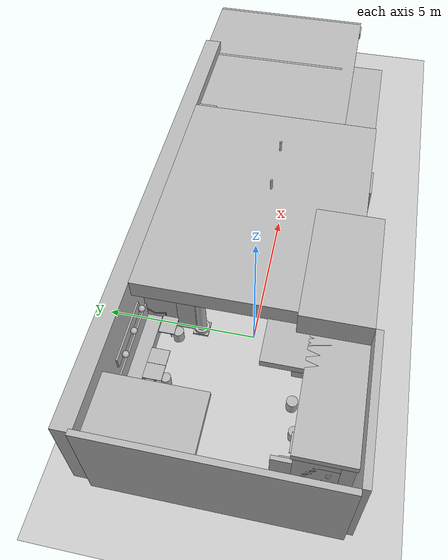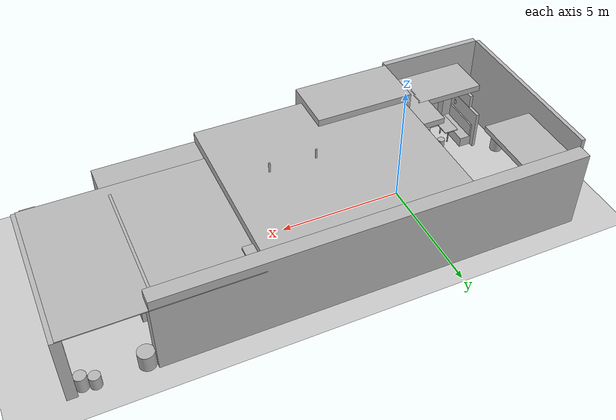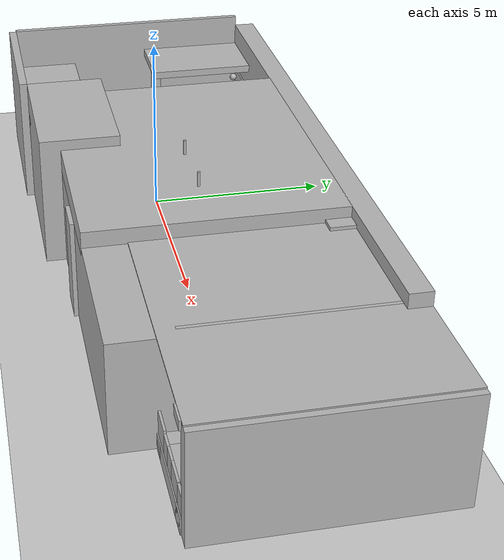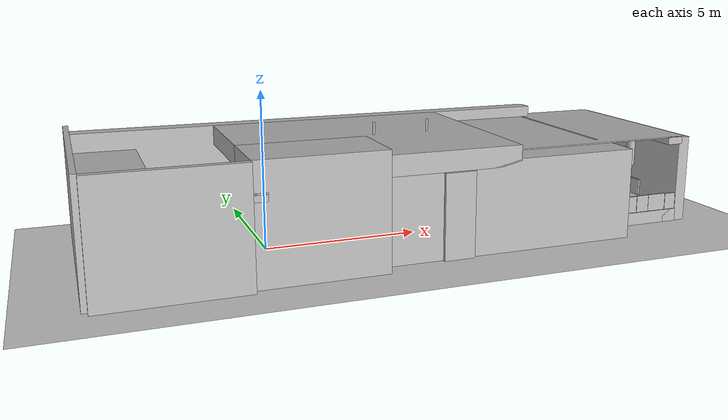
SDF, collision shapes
<?xml version="1.0" encoding="UTF-8"?>
<sdf version="1.6">
    <model name="ionic_interior">
        <static>true</static>
        <link name="base_link">
            <visual name="ionic_visual">
                <cast_shadows>false</cast_shadows>
                <geometry>
                    <mesh>
                        <uri>meshes/Ionic.glb</uri>
                    </mesh>
                </geometry>
            </visual>
            <collision name="collider_cylinder.001">
                <pose>11.63203 3.92229 0.34518 0.0 -0.0 0.0</pose>
                <geometry>
                    <cylinder>
                        <length>0.69082</length>
                        <radius>0.3156</radius>
                    </cylinder>
                </geometry>
            </collision>
            <collision name="collider_cylinder.002">
                <pose>13.41941 4.03289 0.26441 0.0 -0.0 0.0</pose>
                <geometry>
                    <cylinder>
                        <length>0.52911</length>
                        <radius>0.21027</radius>
                    </cylinder>
                </geometry>
            </collision>
            <collision name="collider_cylinder.003">
                <pose>13.85553 3.92535 0.32148 0.0 -0.0 0.0</pose>
                <geometry>
                    <cylinder>
                        <length>0.64296</length>
                        <radius>0.22621</radius>
                    </cylinder>
                </geometry>
            </collision>
            <collision name="collider_cylinder.004">
                <pose>9.35202 0.74052 0.2566 0.0 -0.0 0.0</pose>
                <geometry>
                    <cylinder>
                        <length>0.508</length>
                        <radius>0.17946</radius>
                    </cylinder>
                </geometry>
            </collision>
            <collision name="collider_cylinder.005">
                <pose>8.85725 0.72739 0.2566 0.0 -0.0 0.0</pose>
                <geometry>
                    <cylinder>
                        <length>0.508</length>
                        <radius>0.1798</radius>
                    </cylinder>
                </geometry>
            </collision>
            <collision name="collider_cylinder.006">
                <pose>8.35475 0.71067 0.2566 0.0 -0.0 0.0</pose>
                <geometry>
                    <cylinder>
                        <length>0.508</length>
                        <radius>0.1794</radius>
                    </cylinder>
                </geometry>
            </collision>
            <collision name="collider_cylinder.007">
                <pose>7.87594 0.75414 0.2566 0.0 -0.0 0.0</pose>
                <geometry>
                    <cylinder>
                        <length>0.508</length>
                        <radius>0.18068</radius>
                    </cylinder>
                </geometry>
            </collision>
            <collision name="collider_cylinder.008">
                <pose>9.3645 -0.29616 0.2566 0.0 -0.0 0.0</pose>
                <geometry>
                    <cylinder>
                        <length>0.508</length>
                        <radius>0.17976</radius>
                    </cylinder>
                </geometry>
            </collision>
            <collision name="collider_cylinder.009">
                <pose>8.85209 -0.28822 0.2566 0.0 -0.0 0.0</pose>
                <geometry>
                    <cylinder>
                        <length>0.508</length>
                        <radius>0.18185</radius>
                    </cylinder>
                </geometry>
            </collision>
            <collision name="collider_cylinder.010">
                <pose>8.35524 -0.30836 0.2566 0.0 -0.0 0.0</pose>
                <geometry>
                    <cylinder>
                        <length>0.508</length>
                        <radius>0.1797</radius>
                    </cylinder>
                </geometry>
            </collision>
            <collision name="collider_cylinder.011">
                <pose>7.86338 -0.28717 0.2566 0.0 -0.0 0.0</pose>
                <geometry>
                    <cylinder>
                        <length>0.508</length>
                        <radius>0.17954</radius>
                    </cylinder>
                </geometry>
            </collision>
            <collision name="collider_cylinder.012">
                <pose>7.38266 -0.30014 0.2566 0.0 -0.0 0.0</pose>
                <geometry>
                    <cylinder>
                        <length>0.508</length>
                        <radius>0.17983</radius>
                    </cylinder>
                </geometry>
            </collision>
            <collision name="collider_box.001">
                <pose>8.20823 0.21634 0.39826 0.0 -0.0 0.0</pose>
                <geometry>
                    <box>
                        <size>1.96237 0.1778 0.79652</size>
                    </box>
                </geometry>
            </collision>
            <collision name="collider_box.002">
                <pose>8.233 0.21402 0.8128 0.0 -0.0 0.0</pose>
                <geometry>
                    <box>
                        <size>2.92796 0.66898 0.1016</size>
                    </box>
                </geometry>
            </collision>
            <collision name="collider_cylinder.013">
                <pose>9.96745 -1.10014 0.32148 0.0 -0.0 0.0</pose>
                <geometry>
                    <cylinder>
                        <length>0.64296</length>
                        <radius>0.22621</radius>
                    </cylinder>
                </geometry>
            </collision>
            <collision name="collider_cylinder.014">
                <pose>10.61982 -1.02011 0.43201 0.0 -0.0 0.0</pose>
                <geometry>
                    <cylinder>
                        <length>0.8646</length>
                        <radius>0.39499</radius>
                    </cylinder>
                </geometry>
            </collision>
            <collision name="collider_box.003">
                <pose>9.48713 -1.38931 1.74225 0.0 -0.0 0.0</pose>
                <geometry>
                    <box>
                        <size>2.08298 0.06385 0.41724</size>
                    </box>
                </geometry>
            </collision>
            <collision name="collider_box.004">
                <pose>0.88429 3.62351 1.68606 0.0 -0.0 0.0</pose>
                <geometry>
                    <box>
                        <size>1.65518 0.06748 0.41659</size>
                    </box>
                </geometry>
            </collision>
            <collision name="collider_box.005">
                <pose>-4.24977 3.62399 1.74225 0.0 -0.0 0.0</pose>
                <geometry>
                    <box>
                        <size>2.08298 0.06385 0.41724</size>
                    </box>
                </geometry>
            </collision>
            <collision name="collider_box.007">
                <pose>9.05747 3.62351 1.68606 0.0 -0.0 0.0</pose>
                <geometry>
                    <box>
                        <size>1.65518 0.06748 0.41659</size>
                    </box>
                </geometry>
            </collision>
            <collision name="collider_box.008">
                <pose>-1.61923 3.62399 1.74225 0.0 -0.0 0.0</pose>
                <geometry>
                    <box>
                        <size>2.08298 0.06385 0.41724</size>
                    </box>
                </geometry>
            </collision>
            <collision name="collider_box.009">
                <pose>3.40203 3.62399 1.74225 0.0 -0.0 0.0</pose>
                <geometry>
                    <box>
                        <size>2.08298 0.06385 0.41724</size>
                    </box>
                </geometry>
            </collision>
            <collision name="collider_box.010">
                <pose>-2.62727 -3.55526 1.74225 0.0 -0.0 0.0</pose>
                <geometry>
                    <box>
                        <size>2.08298 0.06385 0.41724</size>
                    </box>
                </geometry>
            </collision>
            <collision name="collider_sphere.001">
                <pose>8.86894 3.47688 1.74825 0.0 -0.0 0.0</pose>
                <geometry>
                    <sphere>
                        <radius>0.10951</radius>
                    </sphere>
                </geometry>
            </collision>
            <collision name="collider_sphere.002">
                <pose>9.72558 3.47688 1.74825 0.0 -0.0 0.0</pose>
                <geometry>
                    <sphere>
                        <radius>0.10951</radius>
                    </sphere>
                </geometry>
            </collision>
            <collision name="collider_sphere.003">
                <pose>6.75966 3.47742 1.74825 0.0 -0.0 0.0</pose>
                <geometry>
                    <sphere>
                        <radius>0.10951</radius>
                    </sphere>
                </geometry>
            </collision>
            <collision name="collider_sphere.004">
                <pose>5.94922 3.47742 1.74825 0.0 -0.0 0.0</pose>
                <geometry>
                    <sphere>
                        <radius>0.10951</radius>
                    </sphere>
                </geometry>
            </collision>
            <collision name="collider_sphere.005">
                <pose>5.13879 3.47742 1.74825 0.0 -0.0 0.0</pose>
                <geometry>
                    <sphere>
                        <radius>0.10951</radius>
                    </sphere>
                </geometry>
            </collision>
            <collision name="collider_sphere.006">
                <pose>-1.93623 -3.40869 1.74825 0.0 -0.0 0.0</pose>
                <geometry>
                    <sphere>
                        <radius>0.10951</radius>
                    </sphere>
                </geometry>
            </collision>
            <collision name="collider_sphere.007">
                <pose>-2.74667 -3.40869 1.74825 0.0 -0.0 0.0</pose>
                <geometry>
                    <sphere>
                        <radius>0.10951</radius>
                    </sphere>
                </geometry>
            </collision>
            <collision name="collider_sphere.008">
                <pose>9.36774 -1.24274 1.74825 0.0 -0.0 0.0</pose>
                <geometry>
                    <sphere>
                        <radius>0.10951</radius>
                    </sphere>
                </geometry>
            </collision>
            <collision name="collider_sphere.009">
                <pose>10.17817 -1.24274 1.74825 0.0 -0.0 0.0</pose>
                <geometry>
                    <sphere>
                        <radius>0.10951</radius>
                    </sphere>
                </geometry>
            </collision>
            <collision name="collider_sphere.010">
                <pose>8.5573 -1.24274 1.74825 0.0 -0.0 0.0</pose>
                <geometry>
                    <sphere>
                        <radius>0.10951</radius>
                    </sphere>
                </geometry>
            </collision>
            <collision name="collider_sphere.011">
                <pose>4.33187 3.47742 1.74825 0.0 -0.0 0.0</pose>
                <geometry>
                    <sphere>
                        <radius>0.10951</radius>
                    </sphere>
                </geometry>
            </collision>
            <collision name="collider_sphere.012">
                <pose>3.52143 3.47742 1.74825 0.0 -0.0 0.0</pose>
                <geometry>
                    <sphere>
                        <radius>0.10951</radius>
                    </sphere>
                </geometry>
            </collision>
            <collision name="collider_sphere.013">
                <pose>2.711 3.47742 1.74825 0.0 -0.0 0.0</pose>
                <geometry>
                    <sphere>
                        <radius>0.10951</radius>
                    </sphere>
                </geometry>
            </collision>
            <collision name="collider_sphere.014">
                <pose>0.69655 3.47688 1.74825 0.0 -0.0 0.0</pose>
                <geometry>
                    <sphere>
                        <radius>0.10951</radius>
                    </sphere>
                </geometry>
            </collision>
            <collision name="collider_sphere.015">
                <pose>1.55319 3.47688 1.74825 0.0 -0.0 0.0</pose>
                <geometry>
                    <sphere>
                        <radius>0.10951</radius>
                    </sphere>
                </geometry>
            </collision>
            <collision name="collider_sphere.016">
                <pose>-0.6894 3.47742 1.74825 0.0 -0.0 0.0</pose>
                <geometry>
                    <sphere>
                        <radius>0.10951</radius>
                    </sphere>
                </geometry>
            </collision>
            <collision name="collider_sphere.017">
                <pose>-2.31027 3.47742 1.74825 0.0 -0.0 0.0</pose>
                <geometry>
                    <sphere>
                        <radius>0.10951</radius>
                    </sphere>
                </geometry>
            </collision>
            <collision name="collider_sphere.018">
                <pose>-1.49984 3.47742 1.74825 0.0 -0.0 0.0</pose>
                <geometry>
                    <sphere>
                        <radius>0.10951</radius>
                    </sphere>
                </geometry>
            </collision>
            <collision name="collider_sphere.019">
                <pose>-3.31994 3.47742 1.74825 0.0 -0.0 0.0</pose>
                <geometry>
                    <sphere>
                        <radius>0.10951</radius>
                    </sphere>
                </geometry>
            </collision>
            <collision name="collider_sphere.020">
                <pose>-4.94081 3.47742 1.74825 0.0 -0.0 0.0</pose>
                <geometry>
                    <sphere>
                        <radius>0.10951</radius>
                    </sphere>
                </geometry>
            </collision>
            <collision name="collider_sphere.021">
                <pose>-4.13038 3.47742 1.74825 0.0 -0.0 0.0</pose>
                <geometry>
                    <sphere>
                        <radius>0.10951</radius>
                    </sphere>
                </geometry>
            </collision>
            <collision name="collider_sphere">
                <pose>-3.5571 -3.40869 1.74825 0.0 -0.0 0.0</pose>
                <geometry>
                    <sphere>
                        <radius>0.10951</radius>
                    </sphere>
                </geometry>
            </collision>
            <collision name="collider_cylinder.015">
                <pose>-4.43757 -2.89793 1.29587 0.0 -0.0 0.0</pose>
                <geometry>
                    <cylinder>
                        <length>0.20336</length>
                        <radius>0.0929</radius>
                    </cylinder>
                </geometry>
            </collision>
            <collision name="collider_box.011">
                <pose>-4.33827 -2.30818 0.72326 0.0 -0.0 0.0</pose>
                <geometry>
                    <box>
                        <size>0.06185 1.61891 0.57256</size>
                    </box>
                </geometry>
            </collision>
            <collision name="collider_box.012">
                <pose>-2.58507 -3.55528 0.75068 0.0 -0.0 0.0</pose>
                <geometry>
                    <box>
                        <size>2.72268 0.06185 0.62792</size>
                    </box>
                </geometry>
            </collision>
            <collision name="collider_box.013">
                <pose>-1.1706 -2.72333 0.72326 0.0 -0.0 0.0</pose>
                <geometry>
                    <box>
                        <size>0.06185 1.62201 0.57256</size>
                    </box>
                </geometry>
            </collision>
            <collision name="collider_box.014">
                <pose>-2.78393 3.62372 0.75068 0.0 -0.0 0.0</pose>
                <geometry>
                    <box>
                        <size>5.39932 0.06185 0.62792</size>
                    </box>
                </geometry>
            </collision>
            <collision name="collider_box.015">
                <pose>-0.02089 1.76609 2.5088 0.0 -0.0 0.0</pose>
                <geometry>
                    <box>
                        <size>0.51018 0.51018 0.07166</size>
                    </box>
                </geometry>
            </collision>
            <collision name="collider_box.016">
                <pose>-1.10957 -1.29025 2.45178 0.0 -0.0 0.0</pose>
                <geometry>
                    <box>
                        <size>0.51018 0.51018 0.07166</size>
                    </box>
                </geometry>
            </collision>
            <collision name="collider_box.017">
                <pose>4.73932 0.17453 0.5715 0.0 -0.0 0.0</pose>
                <geometry>
                    <box>
                        <size>1.8288 0.762 1.143</size>
                    </box>
                </geometry>
            </collision>
            <collision name="collider_box.018">
                <pose>4.73932 0.17453 1.14935 0.0 -0.0 0.0</pose>
                <geometry>
                    <box>
                        <size>1.8542 0.7874 0.0381</size>
                    </box>
                </geometry>
            </collision>
            <collision name="collider_cylinder.016">
                <pose>3.69346 0.17453 1.95201 0.0 -0.0 0.0</pose>
                <geometry>
                    <cylinder>
                        <length>0.49454</length>
                        <radius>0.16168</radius>
                    </cylinder>
                </geometry>
            </collision>
            <collision name="collider_cylinder.017">
                <pose>5.53951 0.17453 2.1411 0.0 -0.0 0.0</pose>
                <geometry>
                    <cylinder>
                        <length>0.42006</length>
                        <radius>0.16168</radius>
                    </cylinder>
                </geometry>
            </collision>
            <collision name="collider_cylinder.018">
                <pose>5.53951 0.17453 2.26998 0.0 -0.0 0.0</pose>
                <geometry>
                    <cylinder>
                        <length>0.12163</length>
                        <radius>0.25313</radius>
                    </cylinder>
                </geometry>
            </collision>
            <collision name="collider_box.019">
                <pose>5.53951 0.17453 2.36266 0.0 -0.0 0.0</pose>
                <geometry>
                    <box>
                        <size>0.51018 0.51018 0.07166</size>
                    </box>
                </geometry>
            </collision>
            <collision name="collider_box.020">
                <pose>4.73932 0.17453 2.50842 0.0 -0.0 0.0</pose>
                <geometry>
                    <box>
                        <size>2.64484 1.2192 0.2032</size>
                    </box>
                </geometry>
            </collision>
            <collision name="collider_box.021">
                <pose>1.73736 2.78528 0.72326 0.0 -0.0 0.0</pose>
                <geometry>
                    <box>
                        <size>0.06185 1.62201 0.57256</size>
                    </box>
                </geometry>
            </collision>
            <collision name="collider_cylinder.019">
                <pose>2.87259 3.02182 0.2226 0.0 -0.0 0.0</pose>
                <geometry>
                    <cylinder>
                        <length>0.4318</length>
                        <radius>0.16326</radius>
                    </cylinder>
                </geometry>
            </collision>
            <collision name="collider_box.022">
                <pose>3.62659 2.97682 0.2226 0.0 -0.0 0.0</pose>
                <geometry>
                    <box>
                        <size>0.29987 0.29987 0.4318</size>
                    </box>
                </geometry>
            </collision>
            <collision name="collider_cylinder.020">
                <pose>4.43959 3.01382 0.2226 0.0 -0.0 0.0</pose>
                <geometry>
                    <cylinder>
                        <length>0.4318</length>
                        <radius>0.1778</radius>
                    </cylinder>
                </geometry>
            </collision>
            <collision name="collider_cylinder.021">
                <pose>5.36159 3.02082 0.2226 0.0 -0.0 0.0</pose>
                <geometry>
                    <cylinder>
                        <length>0.4318</length>
                        <radius>0.1778</radius>
                    </cylinder>
                </geometry>
            </collision>
            <collision name="collider_cylinder.022">
                <pose>-0.51141 2.44082 0.2215 0.0 -0.0 0.0</pose>
                <geometry>
                    <cylinder>
                        <length>0.4318</length>
                        <radius>0.1778</radius>
                    </cylinder>
                </geometry>
            </collision>
            <collision name="collider_cylinder.023">
                <pose>-2.18141 2.39882 0.2215 0.0 -0.0 0.0</pose>
                <geometry>
                    <cylinder>
                        <length>0.4318</length>
                        <radius>0.16326</radius>
                    </cylinder>
                </geometry>
            </collision>
            <collision name="collider_cylinder.024">
                <pose>-3.15741 2.33982 0.22277 0.0 -0.0 0.0</pose>
                <geometry>
                    <cylinder>
                        <length>0.43434</length>
                        <radius>0.15566</radius>
                    </cylinder>
                </geometry>
            </collision>
            <collision name="collider_cylinder.025">
                <pose>-2.17737 -1.59892 0.2215 0.0 -0.0 0.0</pose>
                <geometry>
                    <cylinder>
                        <length>0.4318</length>
                        <radius>0.1778</radius>
                    </cylinder>
                </geometry>
            </collision>
            <collision name="collider_cylinder.026">
                <pose>-3.10328 -1.78173 0.22277 0.0 -0.0 0.0</pose>
                <geometry>
                    <cylinder>
                        <length>0.43434</length>
                        <radius>0.15566</radius>
                    </cylinder>
                </geometry>
            </collision>
            <collision name="collider_cylinder.027">
                <pose>-2.95959 -2.75132 0.2215 0.0 -0.0 0.0</pose>
                <geometry>
                    <cylinder>
                        <length>0.4318</length>
                        <radius>0.16326</radius>
                    </cylinder>
                </geometry>
            </collision>
            <collision name="collider_box.023">
                <pose>-0.35741 -1.11118 0.2215 0.0 -0.0 0.0</pose>
                <geometry>
                    <box>
                        <size>0.29987 0.29987 0.4318</size>
                    </box>
                </geometry>
            </collision>
            <collision name="collider_cylinder.028">
                <pose>0.66159 -1.06818 0.2215 0.0 -0.0 0.0</pose>
                <geometry>
                    <cylinder>
                        <length>0.4318</length>
                        <radius>0.16326</radius>
                    </cylinder>
                </geometry>
            </collision>
            <collision name="collider_cylinder.029">
                <pose>1.48959 -1.09218 0.2215 0.0 -0.0 0.0</pose>
                <geometry>
                    <cylinder>
                        <length>0.4318</length>
                        <radius>0.1778</radius>
                    </cylinder>
                </geometry>
            </collision>
            <collision name="collider_cylinder.030">
                <pose>2.62359 -1.05918 0.2215 0.0 -0.0 0.0</pose>
                <geometry>
                    <cylinder>
                        <length>0.4318</length>
                        <radius>0.16326</radius>
                    </cylinder>
                </geometry>
            </collision>
            <collision name="collider_cylinder.031">
                <pose>-1.10957 -1.29025 2.35909 0.0 -0.0 0.0</pose>
                <geometry>
                    <cylinder>
                        <length>0.12163</length>
                        <radius>0.25313</radius>
                    </cylinder>
                </geometry>
            </collision>
            <collision name="collider_cylinder.032">
                <pose>-1.10957 -1.29025 1.75995 0.0 -0.0 0.0</pose>
                <geometry>
                    <cylinder>
                        <length>1.3606</length>
                        <radius>0.16168</radius>
                    </cylinder>
                </geometry>
            </collision>
            <collision name="collider_cylinder.033">
                <pose>1.40165 -1.30836 1.84445 0.0 -0.0 0.0</pose>
                <geometry>
                    <cylinder>
                        <length>1.06535</length>
                        <radius>0.16168</radius>
                    </cylinder>
                </geometry>
            </collision>
            <collision name="collider_cylinder.034">
                <pose>1.40165 -1.30836 2.29597 0.0 -0.0 0.0</pose>
                <geometry>
                    <cylinder>
                        <length>0.12163</length>
                        <radius>0.25313</radius>
                    </cylinder>
                </geometry>
            </collision>
            <collision name="collider_cylinder.035">
                <pose>-0.02089 1.76609 2.41611 0.0 -0.0 0.0</pose>
                <geometry>
                    <cylinder>
                        <length>0.12163</length>
                        <radius>0.25313</radius>
                    </cylinder>
                </geometry>
            </collision>
            <collision name="collider_cylinder.036">
                <pose>-0.02089 1.76609 2.20574 0.0 -0.0 0.0</pose>
                <geometry>
                    <cylinder>
                        <length>0.58306</length>
                        <radius>0.16168</radius>
                    </cylinder>
                </geometry>
            </collision>
            <collision name="collider_cylinder.037">
                <pose>-0.02089 1.76609 0.81294 0.0 -0.0 0.0</pose>
                <geometry>
                    <cylinder>
                        <length>1.62588</length>
                        <radius>0.16168</radius>
                    </cylinder>
                </geometry>
            </collision>
            <collision name="collider_box.024">
                <pose>-0.02089 1.76609 1.74936 0.0 -0.0 0.0</pose>
                <geometry>
                    <box>
                        <size>0.2032 0.2032 0.49497</size>
                    </box>
                </geometry>
            </collision>
            <collision name="collider_cylinder.038">
                <pose>-5.24208 -0.75653 0.43034 0.0 -0.0 0.0</pose>
                <geometry>
                    <cylinder>
                        <length>0.86069</length>
                        <radius>0.25734</radius>
                    </cylinder>
                </geometry>
            </collision>
            <collision name="collider_box.025">
                <pose>-5.38801 0.9297 2.48833 0.0 -0.0 0.0</pose>
                <geometry>
                    <box>
                        <size>0.51018 0.51018 0.07166</size>
                    </box>
                </geometry>
            </collision>
            <collision name="collider_cylinder.039">
                <pose>-5.38801 0.9297 2.39564 0.0 -0.0 0.0</pose>
                <geometry>
                    <cylinder>
                        <length>0.12163</length>
                        <radius>0.25313</radius>
                    </cylinder>
                </geometry>
            </collision>
            <collision name="collider_cylinder.040">
                <pose>-5.38801 0.9297 1.94412 0.0 -0.0 0.0</pose>
                <geometry>
                    <cylinder>
                        <length>1.06535</length>
                        <radius>0.16168</radius>
                    </cylinder>
                </geometry>
            </collision>
            <collision name="collider_box.026">
                <pose>-3.55822 -2.27623 0.73115 0.0 -0.0 0.0</pose>
                <geometry>
                    <box>
                        <size>0.61003 1.05016 0.03831</size>
                    </box>
                </geometry>
            </collision>
            <collision name="collider_box.027">
                <pose>0.0918 -1.13934 0.73115 0.0 -0.0 0.0</pose>
                <geometry>
                    <box>
                        <size>0.60961 0.52348 0.03831</size>
                    </box>
                </geometry>
            </collision>
            <collision name="collider_box.028">
                <pose>-5.02724 2.73603 0.73115 0.0 -0.0 0.0</pose>
                <geometry>
                    <box>
                        <size>0.52348 0.6096 0.0381</size>
                    </box>
                </geometry>
            </collision>
            <collision name="collider_box.029">
                <pose>-3.66724 2.73603 0.73115 0.0 -0.0 0.0</pose>
                <geometry>
                    <box>
                        <size>0.52348 0.6096 0.0381</size>
                    </box>
                </geometry>
            </collision>
            <collision name="collider_box.030">
                <pose>-2.21024 2.73603 0.73115 0.0 -0.0 0.0</pose>
                <geometry>
                    <box>
                        <size>0.52348 0.6096 0.0381</size>
                    </box>
                </geometry>
            </collision>
            <collision name="collider_box.031">
                <pose>-3.14057 2.73561 0.73115 0.0 -0.0 0.0</pose>
                <geometry>
                    <box>
                        <size>0.52348 0.60961 0.03831</size>
                    </box>
                </geometry>
            </collision>
            <collision name="collider_box.032">
                <pose>-1.68357 2.73561 0.73115 0.0 -0.0 0.0</pose>
                <geometry>
                    <box>
                        <size>0.52348 0.60961 0.03831</size>
                    </box>
                </geometry>
            </collision>
            <collision name="collider_box.033">
                <pose>-0.51625 2.73604 0.73115 0.0 -0.0 0.0</pose>
                <geometry>
                    <box>
                        <size>0.6096 0.52348 0.0381</size>
                    </box>
                </geometry>
            </collision>
            <collision name="collider_box.034">
                <pose>-0.02089 1.76609 0.03583 0.0 -0.0 0.0</pose>
                <geometry>
                    <box>
                        <size>0.51018 0.51018 0.07166</size>
                    </box>
                </geometry>
            </collision>
            <collision name="collider_box.035">
                <pose>1.40165 -1.30836 2.38865 0.0 -0.0 0.0</pose>
                <geometry>
                    <box>
                        <size>0.51018 0.51018 0.07166</size>
                    </box>
                </geometry>
            </collision>
            <collision name="collider_cylinder.041">
                <pose>3.69346 0.17453 2.45994 0.0 -0.0 0.0</pose>
                <geometry>
                    <cylinder>
                        <length>2.62437</length>
                        <radius>0.0381</radius>
                    </cylinder>
                </geometry>
            </collision>
            <collision name="collider_cylinder.042">
                <pose>5.53951 0.17453 2.45994 0.0 -0.0 0.0</pose>
                <geometry>
                    <cylinder>
                        <length>2.62437</length>
                        <radius>0.0381</radius>
                    </cylinder>
                </geometry>
            </collision>
            <collision name="collider_box.036">
                <pose>7.39652 3.46791 2.81019 0.0 -0.0 0.0</pose>
                <geometry>
                    <box>
                        <size>0.66449 0.98557 0.5318</size>
                    </box>
                </geometry>
            </collision>
            <collision name="collider_box.037">
                <pose>13.86428 -0.78657 2.85034 0.0 -0.0 0.0</pose>
                <geometry>
                    <box>
                        <size>0.55106 2.34155 0.24437</size>
                    </box>
                </geometry>
            </collision>
            <collision name="collider_box.038">
                <pose>11.31098 0.56383 0.75068 0.0 -0.0 0.0</pose>
                <geometry>
                    <box>
                        <size>0.06185 0.75192 0.62792</size>
                    </box>
                </geometry>
            </collision>
            <collision name="collider_box.039">
                <pose>11.31098 -0.05003 0.72152 0.0 -0.0 0.0</pose>
                <geometry>
                    <box>
                        <size>0.06185 0.46074 0.56908</size>
                    </box>
                </geometry>
            </collision>
            <collision name="collider_box.040">
                <pose>11.31098 -0.64476 0.72326 0.0 -0.0 0.0</pose>
                <geometry>
                    <box>
                        <size>0.06185 0.67369 0.57256</size>
                    </box>
                </geometry>
            </collision>
            <collision name="collider_box.041">
                <pose>11.31098 -1.20166 0.71464 0.0 -0.0 0.0</pose>
                <geometry>
                    <box>
                        <size>0.06185 0.41797 0.55531</size>
                    </box>
                </geometry>
            </collision>
            <collision name="collider_box.042">
                <pose>12.27099 -1.87506 0.71464 0.0 -0.0 0.0</pose>
                <geometry>
                    <box>
                        <size>0.41797 0.06185 0.55531</size>
                    </box>
                </geometry>
            </collision>
            <collision name="collider_box.043">
                <pose>11.70267 -1.87506 0.75068 0.0 -0.0 0.0</pose>
                <geometry>
                    <box>
                        <size>0.70446 0.06185 0.62792</size>
                    </box>
                </geometry>
            </collision>
            <collision name="collider_box.044">
                <pose>12.72082 -1.87506 0.72152 0.0 -0.0 0.0</pose>
                <geometry>
                    <box>
                        <size>0.46074 0.06185 0.56908</size>
                    </box>
                </geometry>
            </collision>
            <collision name="collider_box.045">
                <pose>13.29298 -1.87506 0.72326 0.0 -0.0 0.0</pose>
                <geometry>
                    <box>
                        <size>0.67369 0.06185 0.57256</size>
                    </box>
                </geometry>
            </collision>
            <collision name="collider_box.046">
                <pose>13.84988 -1.87506 0.71464 0.0 -0.0 0.0</pose>
                <geometry>
                    <box>
                        <size>0.41797 0.06185 0.55531</size>
                    </box>
                </geometry>
            </collision>
            <collision name="collider_box.047">
                <pose>14.04117 0.31459 0.72152 0.0 -0.0 0.0</pose>
                <geometry>
                    <box>
                        <size>0.06184 0.46074 0.56908</size>
                    </box>
                </geometry>
            </collision>
            <collision name="collider_box.048">
                <pose>14.04117 0.76222 0.71464 0.0 -0.0 0.0</pose>
                <geometry>
                    <box>
                        <size>0.06184 0.41797 0.55531</size>
                    </box>
                </geometry>
            </collision>
            <collision name="collider_box.049">
                <pose>11.51071 -0.47569 0.2159 0.0 -0.0 0.0</pose>
                <geometry>
                    <box>
                        <size>0.50162 2.91765 0.4318</size>
                    </box>
                </geometry>
            </collision>
            <collision name="collider_box.050">
                <pose>13.82663 -0.47569 0.2159 0.0 -0.0 0.0</pose>
                <geometry>
                    <box>
                        <size>0.50452 2.91765 0.4318</size>
                    </box>
                </geometry>
            </collision>
            <collision name="collider_box.051">
                <pose>12.66939 -1.67962 0.2159 0.0 -0.0 0.0</pose>
                <geometry>
                    <box>
                        <size>2.81899 0.50979 0.4318</size>
                    </box>
                </geometry>
            </collision>
            <collision name="collider_cylinder.043">
                <pose>13.98652 0.63552 2.15822 0.0 -0.0 0.0</pose>
                <geometry>
                    <cylinder>
                        <length>1.3606</length>
                        <radius>0.16168</radius>
                    </cylinder>
                </geometry>
            </collision>
            <collision name="collider_cylinder.044">
                <pose>13.98652 0.63552 2.75736 0.0 -0.0 0.0</pose>
                <geometry>
                    <cylinder>
                        <length>0.12163</length>
                        <radius>0.25313</radius>
                    </cylinder>
                </geometry>
            </collision>
            <collision name="collider_box.052">
                <pose>13.98652 0.63552 2.88021 0.0 -0.0 0.0</pose>
                <geometry>
                    <box>
                        <size>0.51018 0.51018 0.13199</size>
                    </box>
                </geometry>
            </collision>
            <collision name="collider_box.053">
                <pose>7.39263 3.58108 0.03583 0.0 -0.0 0.0</pose>
                <geometry>
                    <box>
                        <size>0.51018 0.51018 0.07166</size>
                    </box>
                </geometry>
            </collision>
            <collision name="collider_cylinder.045">
                <pose>7.39263 3.58108 0.12852 0.0 -0.0 0.0</pose>
                <geometry>
                    <cylinder>
                        <length>0.12163</length>
                        <radius>0.25313</radius>
                    </cylinder>
                </geometry>
            </collision>
            <collision name="collider_cylinder.046">
                <pose>7.39263 3.58108 0.81294 0.0 -0.0 0.0</pose>
                <geometry>
                    <cylinder>
                        <length>1.62588</length>
                        <radius>0.16168</radius>
                    </cylinder>
                </geometry>
            </collision>
            <collision name="collider_cylinder.047">
                <pose>7.39263 3.58108 2.20574 0.0 -0.0 0.0</pose>
                <geometry>
                    <cylinder>
                        <length>0.58306</length>
                        <radius>0.16168</radius>
                    </cylinder>
                </geometry>
            </collision>
            <collision name="collider_cylinder.048">
                <pose>7.39263 3.58108 2.41611 0.0 -0.0 0.0</pose>
                <geometry>
                    <cylinder>
                        <length>0.12163</length>
                        <radius>0.25313</radius>
                    </cylinder>
                </geometry>
            </collision>
            <collision name="collider_box.054">
                <pose>7.39263 3.58108 2.5088 0.0 -0.0 0.0</pose>
                <geometry>
                    <box>
                        <size>0.51018 0.51018 0.07166</size>
                    </box>
                </geometry>
            </collision>
            <collision name="collider_box.055">
                <pose>7.39263 3.50488 1.74936 0.0 -0.0 0.0</pose>
                <geometry>
                    <box>
                        <size>0.2032 0.0508 0.49497</size>
                    </box>
                </geometry>
            </collision>
            <collision name="collider_box.056">
                <pose>8.21232 3.58353 0.7112 0.0 -0.0 0.0</pose>
                <geometry>
                    <box>
                        <size>1.24654 0.29649 0.0508</size>
                    </box>
                </geometry>
            </collision>
            <collision name="collider_box.057">
                <pose>4.53859 3.50287 0.7112 0.0 -0.0 0.0</pose>
                <geometry>
                    <box>
                        <size>5.32627 0.60703 0.0508</size>
                    </box>
                </geometry>
            </collision>
            <collision name="collider_box.058">
                <pose>2.08356 3.19681 0.7112 0.0 -0.0 -0.44073</pose>
                <geometry>
                    <box>
                        <size>0.24596 1.20866 0.0508</size>
                    </box>
                </geometry>
            </collision>
            <collision name="collider_box.059">
                <pose>1.54215 -1.2961 2.6058 0.0 -0.0 0.0</pose>
                <geometry>
                    <box>
                        <size>0.9004 0.98557 0.36503</size>
                    </box>
                </geometry>
            </collision>
            <collision name="collider_cylinder.049">
                <pose>3.27726 -0.80803 0.30022 0.0 -0.0 0.0</pose>
                <geometry>
                    <cylinder>
                        <length>0.60078</length>
                        <radius>0.23875</radius>
                    </cylinder>
                </geometry>
            </collision>
            <collision name="collider_box.060">
                <pose>2.0448 -1.13934 0.73115 0.0 -0.0 0.0</pose>
                <geometry>
                    <box>
                        <size>0.60961 0.52348 0.03831</size>
                    </box>
                </geometry>
            </collision>
            <collision name="collider_box.061">
                <pose>0.08382 2.77153 0.72326 0.0 -0.0 0.0</pose>
                <geometry>
                    <box>
                        <size>0.06185 1.61891 0.57256</size>
                    </box>
                </geometry>
            </collision>
            <collision name="collider_box.006">
                <pose>-2.09581 -2.65164 0.73115 0.0 -0.0 0.0</pose>
                <geometry>
                    <box>
                        <size>0.60961 0.52348 0.03831</size>
                    </box>
                </geometry>
            </collision>
            <collision name="collider_cylinder.050">
                <pose>-2.09581 -2.61112 0.37735 0.0 -0.0 0.0</pose>
                <geometry>
                    <cylinder>
                        <length>0.7203</length>
                        <radius>0.02624</radius>
                    </cylinder>
                </geometry>
            </collision>
            <collision name="collider_cylinder.051">
                <pose>-3.558 -1.97238 0.37735 0.0 -0.0 0.0</pose>
                <geometry>
                    <cylinder>
                        <length>0.7203</length>
                        <radius>0.02624</radius>
                    </cylinder>
                </geometry>
            </collision>
            <collision name="collider_cylinder.052">
                <pose>-3.55843 -2.58009 0.37735 0.0 -0.0 0.0</pose>
                <geometry>
                    <cylinder>
                        <length>0.7203</length>
                        <radius>0.02624</radius>
                    </cylinder>
                </geometry>
            </collision>
            <collision name="collider_cylinder.053">
                <pose>-5.06776 2.73603 0.37735 0.0 -0.0 0.0</pose>
                <geometry>
                    <cylinder>
                        <length>0.7203</length>
                        <radius>0.02624</radius>
                    </cylinder>
                </geometry>
            </collision>
            <collision name="collider_cylinder.054">
                <pose>-2.25076 2.73603 0.37735 0.0 -0.0 0.0</pose>
                <geometry>
                    <cylinder>
                        <length>0.7203</length>
                        <radius>0.02624</radius>
                    </cylinder>
                </geometry>
            </collision>
            <collision name="collider_cylinder.055">
                <pose>-1.64305 2.73561 0.37735 0.0 -0.0 0.0</pose>
                <geometry>
                    <cylinder>
                        <length>0.7203</length>
                        <radius>0.02624</radius>
                    </cylinder>
                </geometry>
            </collision>
            <collision name="collider_cylinder.056">
                <pose>-0.51625 2.69552 0.37735 0.0 -0.0 0.0</pose>
                <geometry>
                    <cylinder>
                        <length>0.7203</length>
                        <radius>0.02624</radius>
                    </cylinder>
                </geometry>
            </collision>
            <collision name="collider_cylinder.057">
                <pose>-3.70776 2.73603 0.37735 0.0 -0.0 0.0</pose>
                <geometry>
                    <cylinder>
                        <length>0.7203</length>
                        <radius>0.02624</radius>
                    </cylinder>
                </geometry>
            </collision>
            <collision name="collider_cylinder.058">
                <pose>-3.10005 2.73561 0.37735 0.0 -0.0 0.0</pose>
                <geometry>
                    <cylinder>
                        <length>0.7203</length>
                        <radius>0.02624</radius>
                    </cylinder>
                </geometry>
            </collision>
            <collision name="collider_cylinder.059">
                <pose>-0.02089 1.76609 0.12852 0.0 -0.0 0.0</pose>
                <geometry>
                    <cylinder>
                        <length>0.12163</length>
                        <radius>0.25313</radius>
                    </cylinder>
                </geometry>
            </collision>
            <collision name="collider_cylinder.060">
                <pose>0.0918 -1.09882 0.37735 0.0 -0.0 0.0</pose>
                <geometry>
                    <cylinder>
                        <length>0.7203</length>
                        <radius>0.02624</radius>
                    </cylinder>
                </geometry>
            </collision>
            <collision name="collider_cylinder.061">
                <pose>2.0448 -1.09882 0.37735 0.0 -0.0 0.0</pose>
                <geometry>
                    <cylinder>
                        <length>0.7203</length>
                        <radius>0.02624</radius>
                    </cylinder>
                </geometry>
            </collision>
            <collision name="collider_box.062">
                <pose>5.82983 3.62399 1.74225 0.0 -0.0 0.0</pose>
                <geometry>
                    <box>
                        <size>2.08298 0.06385 0.41724</size>
                    </box>
                </geometry>
            </collision>
            <collision name="collider_cylinder">
                <pose>10.68567 -0.35753 0.26441 0.0 -0.0 0.0</pose>
                <geometry>
                    <cylinder>
                        <length>0.52911</length>
                        <radius>0.21027</radius>
                    </cylinder>
                </geometry>
            </collision>
            <collision name="collider_box.063">
                <pose>-0.11531 -1.25754 1.75784 1.5708 2.9823 -0.0</pose>
                <geometry>
                    <box>
                        <size>1.36329 0.88263 0.35837</size>
                    </box>
                </geometry>
            </collision>
            <collision name="collider_box.064">
                <pose>11.04967 1.1363 1.49915 0.0 -0.0 0.0</pose>
                <geometry>
                    <box>
                        <size>0.1003 5.16506 2.96885</size>
                    </box>
                </geometry>
            </collision>
            <collision name="collider_box.065">
                <pose>2.92242 3.94114 1.6862 -0.0 -0.0 0.0</pose>
                <geometry>
                    <box>
                        <size>16.81763 0.59726 3.3724</size>
                    </box>
                </geometry>
            </collision>
            <collision name="collider_box.066">
                <pose>14.26767 1.16636 1.4732 -0.0 -0.0 0.0</pose>
                <geometry>
                    <box>
                        <size>0.39328 6.14683 2.9464</size>
                    </box>
                </geometry>
            </collision>
            <collision name="collider_box.067">
                <pose>8.00057 -1.30424 1.4732 -0.0 -0.0 0.0</pose>
                <geometry>
                    <box>
                        <size>0.71443 0.23631 2.9464</size>
                    </box>
                </geometry>
            </collision>
            <collision name="collider_box.068">
                <pose>8.53356 -2.22507 1.4732 -0.0 -0.0 0.0</pose>
                <geometry>
                    <box>
                        <size>5.59536 1.60534 2.9464</size>
                    </box>
                </geometry>
            </collision>
            <collision name="collider_box.069">
                <pose>3.79497 -2.03495 1.3589 -0.0 -0.0 0.0</pose>
                <geometry>
                    <box>
                        <size>1.88422 1.98558 2.7178</size>
                    </box>
                </geometry>
            </collision>
            <collision name="collider_box.070">
                <pose>0.85609 -2.5049 1.8288 -0.0 -0.0 0.0</pose>
                <geometry>
                    <box>
                        <size>3.99355 2.16501 3.6576</size>
                    </box>
                </geometry>
            </collision>
            <collision name="collider_box.071">
                <pose>-4.46026 2.10846 2.63525 -0.0 -0.0 0.0</pose>
                <geometry>
                    <box>
                        <size>2.05227 3.09827 0.2159</size>
                    </box>
                </geometry>
            </collision>
            <collision name="collider_box.072">
                <pose>-1.47247 -2.06945 2.6162 -0.0 -0.0 0.0</pose>
                <geometry>
                    <box>
                        <size>1.56047 3.03592 0.254</size>
                    </box>
                </geometry>
            </collision>
            <collision name="collider_box.073">
                <pose>-2.69572 -2.70434 2.6162 -0.0 -0.0 0.0</pose>
                <geometry>
                    <box>
                        <size>4.00696 1.76614 0.254</size>
                    </box>
                </geometry>
            </collision>
            <collision name="collider_box.074">
                <pose>1.88134 2.59204 1.3589 -0.0 -0.0 0.0</pose>
                <geometry>
                    <box>
                        <size>0.2159 2.13112 2.7178</size>
                    </box>
                </geometry>
            </collision>
            <collision name="collider_box.075">
                <pose>1.88134 1.37901 2.41438 -0.0 -0.0 0.0</pose>
                <geometry>
                    <box>
                        <size>0.2159 4.55718 0.60684</size>
                    </box>
                </geometry>
            </collision>
            <collision name="collider_box.076">
                <pose>8.17418 1.23576 2.78538 -0.0 -0.0 0.0</pose>
                <geometry>
                    <box>
                        <size>0.127 4.84369 0.32204</size>
                    </box>
                </geometry>
            </collision>
            <collision name="collider_box.077">
                <pose>8.17418 -0.58305 2.60275 -0.0 -0.0 0.0</pose>
                <geometry>
                    <box>
                        <size>0.127 1.20607 0.6873</size>
                    </box>
                </geometry>
            </collision>
            <collision name="collider_box.078">
                <pose>3.66162 -0.25202 0.58075 -0.0 -0.0 0.0</pose>
                <geometry>
                    <box>
                        <size>0.27532 1.58028 1.16151</size>
                    </box>
                </geometry>
            </collision>
            <collision name="collider_box.079">
                <pose>5.23606 -3.08497 1.3589 -0.0 -0.0 0.0</pose>
                <geometry>
                    <box>
                        <size>0.99964 0.11447 2.7178</size>
                    </box>
                </geometry>
            </collision>
            <collision name="collider_box.080">
                <pose>-4.43834 -2.53829 1.11185 -0.0 -0.0 0.0</pose>
                <geometry>
                    <box>
                        <size>0.12701 1.30958 2.22371</size>
                    </box>
                </geometry>
            </collision>
            <collision name="collider_box.081">
                <pose>-4.43834 -2.23482 0.83121 -0.0 -0.0 0.0</pose>
                <geometry>
                    <box>
                        <size>0.12701 1.91652 1.66242</size>
                    </box>
                </geometry>
            </collision>
            <collision name="collider_box.082">
                <pose>1.51078 2.80917 0.2159 -0.0 -0.0 0.0</pose>
                <geometry>
                    <box>
                        <size>0.52523 1.69686 0.4318</size>
                    </box>
                </geometry>
            </collision>
            <collision name="collider_box.083">
                <pose>0.3035 2.80917 0.2159 -0.0 -0.0 0.0</pose>
                <geometry>
                    <box>
                        <size>0.51069 1.69686 0.4318</size>
                    </box>
                </geometry>
            </collision>
            <collision name="collider_box.084">
                <pose>-0.01533 2.8025 0.82974 -0.0 -0.0 0.0</pose>
                <geometry>
                    <box>
                        <size>0.12701 1.71021 1.65947</size>
                    </box>
                </geometry>
            </collision>
            <collision name="collider_box.085">
                <pose>-0.01533 3.11062 1.11177 -0.0 -0.0 0.0</pose>
                <geometry>
                    <box>
                        <size>0.12701 1.09396 2.22355</size>
                    </box>
                </geometry>
            </collision>
            <collision name="collider_box.086">
                <pose>-1.39295 -2.70488 0.2159 -0.0 -0.0 0.0</pose>
                <geometry>
                    <box>
                        <size>0.50452 1.76505 0.4318</size>
                    </box>
                </geometry>
            </collision>
            <collision name="collider_box.087">
                <pose>-2.55133 -3.33251 0.2159 -0.0 -0.0 0.0</pose>
                <geometry>
                    <box>
                        <size>2.82127 0.5098 0.4318</size>
                    </box>
                </geometry>
            </collision>
            <collision name="collider_box.088">
                <pose>-4.12403 -2.33308 0.2159 -0.0 -0.0 0.0</pose>
                <geometry>
                    <box>
                        <size>0.50162 1.72 0.4318</size>
                    </box>
                </geometry>
            </collision>
            <collision name="collider_box.089">
                <pose>-4.24103 -3.39024 1.2446 -0.0 -0.0 0.0</pose>
                <geometry>
                    <box>
                        <size>0.55814 0.39433 2.4892</size>
                    </box>
                </geometry>
            </collision>
            <collision name="collider_box.090">
                <pose>-3.31355 -3.69876 1.8288 -0.0 -0.0 0.0</pose>
                <geometry>
                    <box>
                        <size>4.34571 0.22271 3.6576</size>
                    </box>
                </geometry>
            </collision>
            <collision name="collider_box.091">
                <pose>-5.57011 0.0351 1.8288 0.0 -0.0 0.0</pose>
                <geometry>
                    <box>
                        <size>0.16742 7.24501 3.6576</size>
                    </box>
                </geometry>
            </collision>
            <collision name="collider_box.092">
                <pose>-2.78262 3.38024 0.2159 -0.0 -0.0 0.0</pose>
                <geometry>
                    <box>
                        <size>5.40757 0.55472 0.4318</size>
                    </box>
                </geometry>
            </collision>
            <collision name="collider_box.093">
                <pose>0.72739 2.25217 2.62255 -0.0 -0.0 0.0</pose>
                <geometry>
                    <box>
                        <size>2.09201 2.81085 0.1905</size>
                    </box>
                </geometry>
            </collision>
            <collision name="collider_box.094">
                <pose>3.22792 0.31493 3.0451 -0.0 -0.0 0.0</pose>
                <geometry>
                    <box>
                        <size>8.1714 6.68534 0.6546</size>
                    </box>
                </geometry>
            </collision>
            <collision name="collider_box.095">
                <pose>3.12456 3.38471 2.62255 -0.0 -0.0 0.0</pose>
                <geometry>
                    <box>
                        <size>2.27054 0.54578 0.1905</size>
                    </box>
                </geometry>
            </collision>
            <collision name="collider_box.096">
                <pose>2.16081 2.87513 2.62255 -0.0 -0.0 0.0</pose>
                <geometry>
                    <box>
                        <size>0.34303 1.56494 0.1905</size>
                    </box>
                </geometry>
            </collision>
            <collision name="collider_box.097">
                <pose>10.80451 1.16636 2.96498 -0.0 -0.0 0.0</pose>
                <geometry>
                    <box>
                        <size>6.98178 6.14683 0.03716</size>
                    </box>
                </geometry>
            </collision>
            <collision name="collider_box.098">
                <pose>11.14682 0.36493 0.61484 -0.0 -0.0 0.0</pose>
                <geometry>
                    <box>
                        <size>0.254 3.57466 1.22969</size>
                    </box>
                </geometry>
            </collision>
            <collision name="collider_box">
                <pose>11.07328 0.36217 2.32495 -0.0 -0.0 0.0</pose>
                <geometry>
                    <box>
                        <size>0.1016 3.56915 1.24289</size>
                    </box>
                </geometry>
            </collision>
            <collision name="ground">
                <pose>4.5271 0 0 0 0 0</pose>
                <geometry>
                    <plane>
                        <size>23.9 10.3</size>
                    </plane>
                </geometry>
            </collision>
            <sensor name='sensor_contact' type='contact'>
                <contact>
                    <collision>collider_box</collision>
                    <collision>collider_box.001</collision>
                    <collision>collider_box.002</collision>
                    <collision>collider_box.003</collision>
                    <collision>collider_box.004</collision>
                    <collision>collider_box.005</collision>
                    <collision>collider_box.006</collision>
                    <collision>collider_box.007</collision>
                    <collision>collider_box.008</collision>
                    <collision>collider_box.009</collision>
                    <collision>collider_box.010</collision>
                    <collision>collider_box.011</collision>
                    <collision>collider_box.012</collision>
                    <collision>collider_box.013</collision>
                    <collision>collider_box.014</collision>
                    <collision>collider_box.015</collision>
                    <collision>collider_box.016</collision>
                    <collision>collider_box.017</collision>
                    <collision>collider_box.018</collision>
                    <collision>collider_box.019</collision>
                    <collision>collider_box.020</collision>
                    <collision>collider_box.021</collision>
                    <collision>collider_box.022</collision>
                    <collision>collider_box.023</collision>
                    <collision>collider_box.024</collision>
                    <collision>collider_box.025</collision>
                    <collision>collider_box.026</collision>
                    <collision>collider_box.027</collision>
                    <collision>collider_box.028</collision>
                    <collision>collider_box.029</collision>
                    <collision>collider_box.030</collision>
                    <collision>collider_box.031</collision>
                    <collision>collider_box.032</collision>
                    <collision>collider_box.033</collision>
                    <collision>collider_box.034</collision>
                    <collision>collider_box.035</collision>
                    <collision>collider_box.036</collision>
                    <collision>collider_box.037</collision>
                    <collision>collider_box.038</collision>
                    <collision>collider_box.039</collision>
                    <collision>collider_box.040</collision>
                    <collision>collider_box.041</collision>
                    <collision>collider_box.042</collision>
                    <collision>collider_box.043</collision>
                    <collision>collider_box.044</collision>
                    <collision>collider_box.045</collision>
                    <collision>collider_box.046</collision>
                    <collision>collider_box.047</collision>
                    <collision>collider_box.048</collision>
                    <collision>collider_box.049</collision>
                    <collision>collider_box.050</collision>
                    <collision>collider_box.051</collision>
                    <collision>collider_box.052</collision>
                    <collision>collider_box.053</collision>
                    <collision>collider_box.054</collision>
                    <collision>collider_box.055</collision>
                    <collision>collider_box.056</collision>
                    <collision>collider_box.057</collision>
                    <collision>collider_box.058</collision>
                    <collision>collider_box.059</collision>
                    <collision>collider_box.060</collision>
                    <collision>collider_box.061</collision>
                    <collision>collider_box.062</collision>
                    <collision>collider_box.063</collision>
                    <collision>collider_box.064</collision>
                    <collision>collider_box.065</collision>
                    <collision>collider_box.066</collision>
                    <collision>collider_box.067</collision>
                    <collision>collider_box.068</collision>
                    <collision>collider_box.069</collision>
                    <collision>collider_box.070</collision>
                    <collision>collider_box.071</collision>
                    <collision>collider_box.072</collision>
                    <collision>collider_box.073</collision>
                    <collision>collider_box.074</collision>
                    <collision>collider_box.075</collision>
                    <collision>collider_box.076</collision>
                    <collision>collider_box.077</collision>
                    <collision>collider_box.078</collision>
                    <collision>collider_box.079</collision>
                    <collision>collider_box.080</collision>
                    <collision>collider_box.081</collision>
                    <collision>collider_box.082</collision>
                    <collision>collider_box.083</collision>
                    <collision>collider_box.084</collision>
                    <collision>collider_box.085</collision>
                    <collision>collider_box.086</collision>
                    <collision>collider_box.087</collision>
                    <collision>collider_box.088</collision>
                    <collision>collider_box.089</collision>
                    <collision>collider_box.090</collision>
                    <collision>collider_box.091</collision>
                    <collision>collider_box.092</collision>
                    <collision>collider_box.093</collision>
                    <collision>collider_box.094</collision>
                    <collision>collider_box.095</collision>
                    <collision>collider_box.096</collision>
                    <collision>collider_box.097</collision>
                    <collision>collider_box.098</collision>
                    <collision>collider_cylinder.001</collision>
                    <collision>collider_cylinder.002</collision>
                    <collision>collider_cylinder.003</collision>
                    <collision>collider_cylinder.004</collision>
                    <collision>collider_cylinder.005</collision>
                    <collision>collider_cylinder.006</collision>
                    <collision>collider_cylinder.007</collision>
                    <collision>collider_cylinder.008</collision>
                    <collision>collider_cylinder.009</collision>
                    <collision>collider_cylinder.010</collision>
                    <collision>collider_cylinder.011</collision>
                    <collision>collider_cylinder.012</collision>
                    <collision>collider_cylinder.013</collision>
                    <collision>collider_cylinder.014</collision>
                    <collision>collider_cylinder.015</collision>
                    <collision>collider_cylinder.016</collision>
                    <collision>collider_cylinder.017</collision>
                    <collision>collider_cylinder.018</collision>
                    <collision>collider_cylinder.019</collision>
                    <collision>collider_cylinder.020</collision>
                    <collision>collider_cylinder.021</collision>
                    <collision>collider_cylinder.022</collision>
                    <collision>collider_cylinder.023</collision>
                    <collision>collider_cylinder.024</collision>
                    <collision>collider_cylinder.025</collision>
                    <collision>collider_cylinder.026</collision>
                    <collision>collider_cylinder.027</collision>
                    <collision>collider_cylinder.028</collision>
                    <collision>collider_cylinder.029</collision>
                    <collision>collider_cylinder.030</collision>
                    <collision>collider_cylinder.031</collision>
                    <collision>collider_cylinder.032</collision>
                    <collision>collider_cylinder.033</collision>
                    <collision>collider_cylinder.034</collision>
                    <collision>collider_cylinder.035</collision>
                    <collision>collider_cylinder.036</collision>
                    <collision>collider_cylinder.037</collision>
                    <collision>collider_cylinder.038</collision>
                    <collision>collider_cylinder.039</collision>
                    <collision>collider_cylinder.040</collision>
                    <collision>collider_cylinder.041</collision>
                    <collision>collider_cylinder.042</collision>
                    <collision>collider_cylinder.043</collision>
                    <collision>collider_cylinder.044</collision>
                    <collision>collider_cylinder.045</collision>
                    <collision>collider_cylinder.046</collision>
                    <collision>collider_cylinder.047</collision>
                    <collision>collider_cylinder.048</collision>
                    <collision>collider_cylinder.049</collision>
                    <collision>collider_cylinder.050</collision>
                    <collision>collider_cylinder.051</collision>
                    <collision>collider_cylinder.052</collision>
                    <collision>collider_cylinder.053</collision>
                    <collision>collider_cylinder.054</collision>
                    <collision>collider_cylinder.055</collision>
                    <collision>collider_cylinder.056</collision>
                    <collision>collider_cylinder.057</collision>
                    <collision>collider_cylinder.058</collision>
                    <collision>collider_cylinder.059</collision>
                    <collision>collider_cylinder.060</collision>
                    <collision>collider_cylinder.061</collision>
                    <collision>collider_sphere.001</collision>
                    <collision>collider_sphere.002</collision>
                    <collision>collider_sphere.003</collision>
                    <collision>collider_sphere.004</collision>
                    <collision>collider_sphere.005</collision>
                    <collision>collider_sphere.006</collision>
                    <collision>collider_sphere.007</collision>
                    <collision>collider_sphere.008</collision>
                    <collision>collider_sphere.009</collision>
                    <collision>collider_sphere.010</collision>
                    <collision>collider_sphere.011</collision>
                    <collision>collider_sphere.012</collision>
                    <collision>collider_sphere.013</collision>
                    <collision>collider_sphere.014</collision>
                    <collision>collider_sphere.015</collision>
                    <collision>collider_sphere.016</collision>
                    <collision>collider_sphere.017</collision>
                    <collision>collider_sphere.018</collision>
                    <collision>collider_sphere.019</collision>
                    <collision>collider_sphere.020</collision>
                    <collision>collider_sphere.021</collision>
                </contact>
            </sensor>
        </link>
        <plugin filename="gz-sim-touchplugin-system"
                name="gz::sim::systems::TouchPlugin">
            <target>diff_drive</target>
            <namespace>ionic</namespace>
            <time>0.001</time>
            <enabled>true</enabled>
        </plugin>
    </model>
</sdf>
